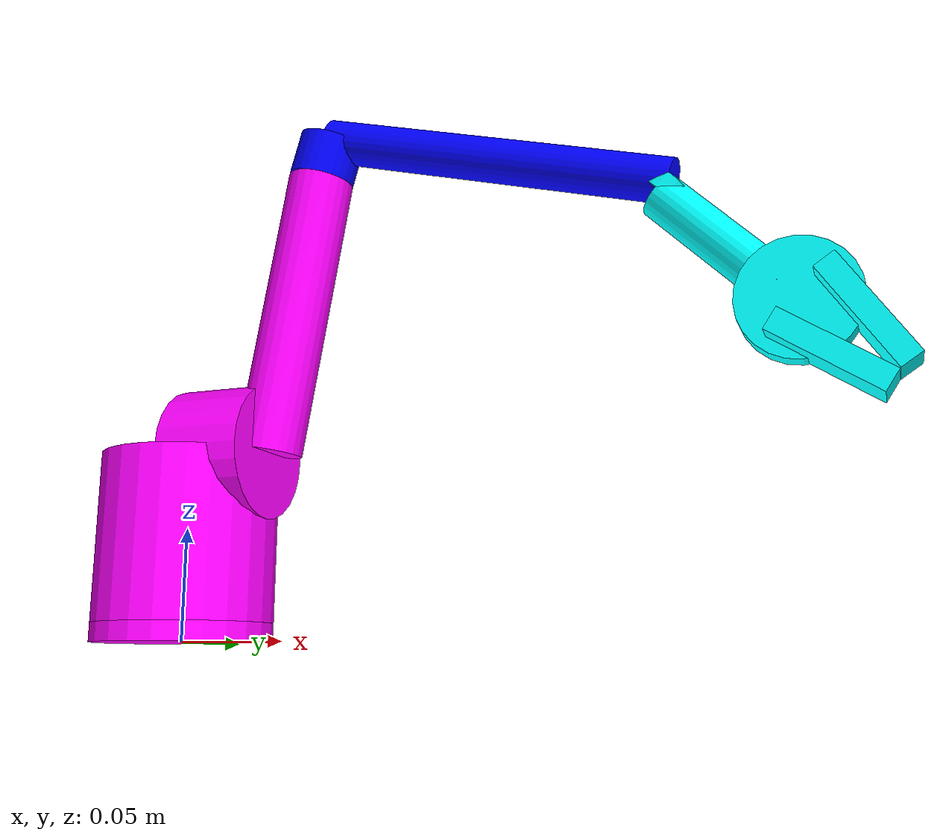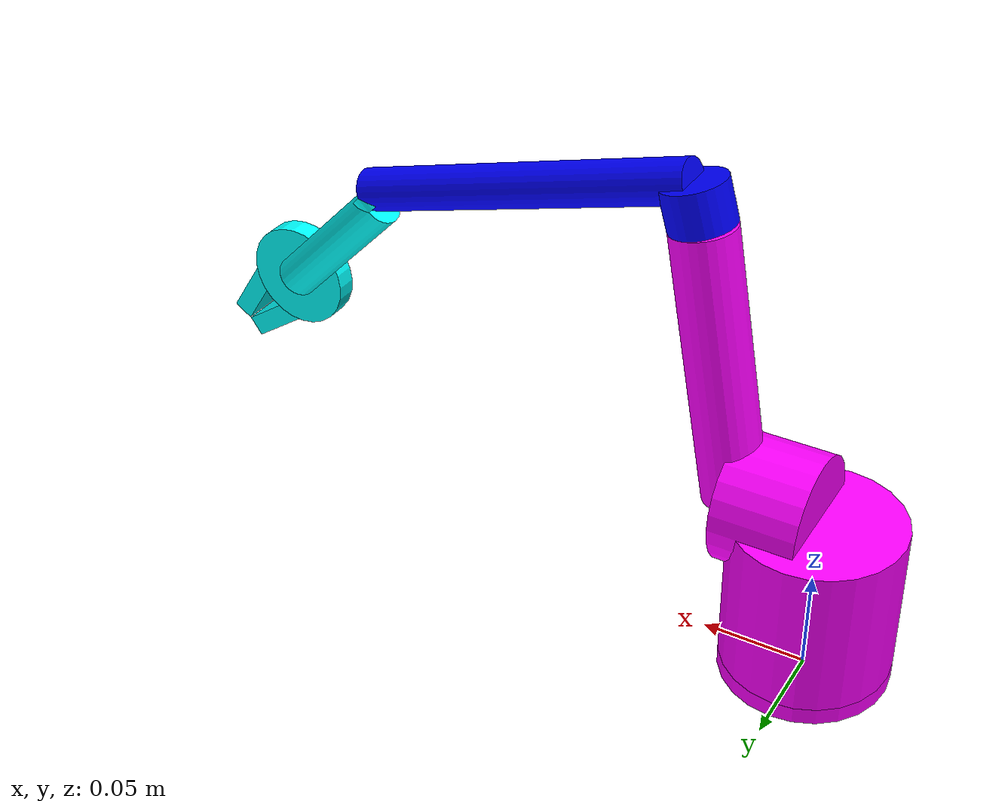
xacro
<?xml version="1.0"?>
<robot xmlns:xacro="http://www.ros.org/wiki/xacro" name="serial">

<xacro:include filename="../macros/inertia.xacro"/>
<xacro:include filename="parameters2.xacro"/>

<xacro:macro name="arm_link" params="joint parent link a_prev alpha d a theta ra ma rd md material">
<joint name="${joint}" type="revolute">
    <axis xyz="0 0 1"/>
    <limit effort="1000.0" lower="${-pi/3}" upper="${pi/3}" velocity="10"/>
    <origin
        rpy="${alpha} ${2*atan(-tan(theta/2)*sin(alpha))} ${2*atan(tan(theta/2)*cos(alpha))}"
        xyz="${a_prev} ${-d*sin(alpha)} ${d*cos(alpha)}"/>
    <parent link="${parent}"/>
    <child link="${link}"/>
</joint>
<transmission name="${joint}_tran">
    <type>transmission_interface/SimpleTransmission</type>
    <joint name="${joint}">
        <hardwareInterface>hardware_interface/PositionJointInterface</hardwareInterface>
    </joint>
    <actuator name="${joint}_actr">
        <hardwareInterface>hardware_interface/PositionJointInterface</hardwareInterface>
        <mechanicalReduction>1</mechanicalReduction>
    </actuator>
</transmission>

<link name="${link}">
<xacro:if value="${a!=0}">
<visual>
    <geometry>
        <cylinder length="${a}" radius="${ra}"/>
    </geometry>
    <origin rpy="0 ${pi/2} 0" xyz="${a/2} 0 0"/>
    <material name="${material}"/>
</visual>
<collision>
    <geometry>
        <cylinder length="${a}" radius="${ra}"/>
    </geometry>
    <origin rpy="0 ${pi/2} 0" xyz="${a/2} 0 0"/>
</collision>
</xacro:if>
<xacro:if value="${d!=0}">
<visual>
    <geometry>
        <cylinder length="${d}" radius="${rd}"/>
    </geometry>
    <origin rpy="0 0 0" xyz="0 0 ${-d/2}"/>
    <material name="${material}"/>
</visual>
<collision>
    <geometry>
        <cylinder length="${d}" radius="${rd}"/>
    </geometry>
    <origin rpy="0 0 0" xyz="0 0 ${-d/2}"/>
    <material name="${material}"/>
</collision>
</xacro:if>
<inertial>
    <origin rpy="0 0 0" xyz="0 0 0"/>
    <mass value="${ma+md}"/>
    <inertia
        ixx="${ma*(ra**2)/2 + md*(rd**2)/4 + md*(d**2)/3}"
        iyy="${ma*(ra**2)/4 + ma*(a**2)/3 + md*(rd**2)/4 + md*(d**2)/3}"
        izz="${md*(rd**2)/2 + ma*(ra**2)/4 + ma*(a**2)/3}"
        ixy="0" ixz="0" iyz="0"/>
</inertial>
</link>

</xacro:macro>

<gazebo>
<joint name="world_fix" type="fixed">
    <pose>0 0 0 0 0 0</pose>
    <parent>world</parent>
    <child>base_link</child>
</joint>
</gazebo>

<link name="base_link"/>
<joint name="base_joint" type="fixed">
    <origin rpy="0 0 0" xyz="0 0 ${0.1*d1}"/>
    <parent link="base_link"/>
    <child link="fixed_base"/>
</joint>

<link name="fixed_base">
<inertial>
    <origin rpy="0 0 0" xyz="0 0 ${-0.05*d1}"/>
    <mass value="${md1}"/>
    <xacro:cylinder_inertia_urdf mass="${md1}" radius="${rd1}" length="${0.1*d1}"/>
</inertial>
<visual>
    <geometry>
        <cylinder length="${0.1*d1}" radius="${rd1}"/>
    </geometry>
    <origin rpy="0 0 0" xyz="0 0 ${-0.05*d1}"/>
    <material name="mat1"/>
</visual>
<collision>
    <geometry>
        <cylinder length="${0.1*d1}" radius="${rd1}"/>
    </geometry>
    <origin rpy="0 0 0" xyz="0 0 ${-0.05*d1}"/>
</collision>
</link>

<xacro:arm_link joint="theta_1" parent="fixed_base" link="link1"
    a_prev="0" alpha="${alpha1}" d="${0.9*d1}" a="${a1}" theta="${theta1}" ra="${ra1}" ma="${ma1}" rd="${rd1}" md="${md1}" material="mat1"
/>

<xacro:arm_link joint="theta_2" parent="link1" link="link2"
    a_prev="${a1}" alpha="${alpha2}" d="${d2}" a="${a2}" theta="${theta2}" ra="${ra2}" ma="${ma2}" rd="${rd2}" md="${md2}" material="mat2"
/>

<xacro:arm_link joint="theta_3" parent="link2" link="link3"
    a_prev="${a2}" alpha="${alpha3}" d="${d3}" a="${a3}" theta="${theta3}" ra="${ra3}" ma="${ma3}" rd="${rd3}" md="${md3}" material="mat3"
/>

<xacro:arm_link joint="theta_4" parent="link3" link="link4"
    a_prev="${a3}" alpha="${alpha4}" d="${d4}" a="${a4}" theta="${theta4}" ra="${ra4}" ma="${ma4}" rd="${rd4}" md="${md4}" material="mat4"
/>

<xacro:arm_link joint="theta_5" parent="link4" link="link5"
    a_prev="${a4}" alpha="${alpha5}" d="${d5}" a="${a5}" theta="${theta5}" ra="${ra5}" ma="${ma5}" rd="${rd5}" md="${md5}" material="mat5"
/>

<xacro:arm_link joint="theta_6" parent="link5" link="link6"
    a_prev="${a5}" alpha="${alpha6}" d="${d6}" a="${a6}" theta="${theta6}" ra="${ra6}" ma="${ma6}" rd="${rd6}" md="${md6}" material="mat6"
/>

<link name="gripper_left">
<visual>
    <geometry>
        <box size="0.02 0.01 0.05"/>
    </geometry>
    <origin xyz="0 0 0.025"/>
    <material name="mat6"/>
</visual>
<collision>
    <geometry>
        <box size="0.02 0.01 0.05"/>
    </geometry>
    <origin xyz="0 0 0.025"/>
    <gazebo>
    <surface>
        <contact>
            <ode>
                <kp>1e15</kp>
                <kd>1e13</kd>
            </ode>
        </contact>
        <friction>
            <ode>
                <mu>1</mu>
                <mu2>1</mu2>
            </ode>
        </friction>
    </surface>
    </gazebo>
</collision>
<inertial>
    <origin xyz="0 0 0.025"/>
    <mass value="${ma6*2}"/>
    <xacro:box_inertia_urdf mass="${ma6*2}" w="0.02" h="0.01" d="0.05"/>
</inertial>
</link>

<link name="gripper_right">
<visual>
    <geometry>
        <box size="0.02 0.01 0.05"/>
    </geometry>
    <origin xyz="0 0 0.025"/>
    <material name="mat6"/>
</visual>
<collision>
    <geometry>
        <box size="0.02 0.01 0.05"/>
    </geometry>
    <origin xyz="0 0 0.025"/>
    <gazebo>
    <surface>
        <contact>
            <ode>
                <kp>1e15</kp>
                <kd>1e13</kd>
            </ode>
        </contact>
        <friction>
            <ode>
                <mu>1</mu>
                <mu2>1</mu2>
            </ode>
        </friction>
    </surface>
    </gazebo>
</collision>
<inertial>
    <origin xyz="0 0 0.025"/>
    <mass value="${ma6*2}"/>
    <xacro:box_inertia_urdf mass="${ma6*2}" w="0.02" h="0.01" d="0.05"/>
</inertial>
</link>

<joint name="gripper" type="revolute">
    <origin xyz="0.011 0.015 0" rpy="0.2 0 0"/>
    <parent link="link6"/>
    <child link="gripper_left"/>
    <axis xyz="-1 0 0"/>
    <limit
        effort="1000.0"
        lower="0"
        upper="${pi/2}"
        velocity="5"
    />
</joint>
<transmission name="gripper_tran">
    <type>transmission_interface/SimpleTransmission</type>
    <joint name="gripper">
        <hardwareInterface>hardware_interface/PositionJointInterface</hardwareInterface>
    </joint>
    <actuator name="gripper_actr">
        <hardwareInterface>hardware_interface/PositionJointInterface</hardwareInterface>
        <mechanicalReduction>1</mechanicalReduction>
    </actuator>
</transmission>

<joint name="gripper_mimic" type="revolute">
    <origin xyz="0.011 -0.015 0" rpy="-0.2 0 0"/>
    <parent link="link6"/>
    <child link="gripper_right"/>
    <axis xyz="1 0 0"/>
    <limit
        effort="1000.0"
        lower="0"
        upper="${pi/2}"
        velocity="5"
    />
    <mimic joint="gripper"/>
</joint>

<gazebo>
    <plugin name="gazebo_ros_control" filename="libgazebo_ros_control.so"/>
    <plugin name="gripper_mimic_joint_plugin" filename="libroboticsgroup_upatras_gazebo_mimic_joint_plugin.so">
        <joint>gripper</joint>
        <mimicJoint>gripper_mimic</mimicJoint>
        <hasPID />
        <maxEffort>5000</maxEffort>
    </plugin>
</gazebo>

</robot>

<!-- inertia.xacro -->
<robot xmlns:xacro="http://www.ros.org/wiki/xacro" name="delta_parameters">

<xacro:macro name="cylinder_inertia_urdf" params="mass radius length">
<inertia
    ixx="${mass*(radius**2/4 + length**2/12)}"
    iyy="${mass*(radius**2/4 + length**2/12)}"
    izz="${mass*(radius**2/2)}"
    ixy="0" ixz="0" iyz="0"
/>
</xacro:macro>

<xacro:macro name="box_inertia_urdf" params="mass w h d">
<inertia
    ixx="${mass*(h**2 + d**2)/12}"
    iyy="${mass*(w**2 + d**2)/12}"
    izz="${mass*(w**2 + h**2)/12}"
    ixy="0" ixz="0" iyz="0"
/>
</xacro:macro>

<xacro:macro name="cylinder_inertia_sdf" params="mass radius length">
<inertia>
    <ixx>${mass*(radius**2/4 + length**2/12)}</ixx>
    <iyy>${mass*(radius**2/4 + length**2/12)}</iyy>
    <izz>${mass*(radius**2/2)}</izz>
    <ixy>0</ixy> <ixz>0</ixz> <iyz>0</iyz>
</inertia>
</xacro:macro>

<xacro:macro name="box_inertia_sdf" params="mass w h d">
<inertia>
    <ixx>${mass*(h**2 + d**2)/12}</ixx>
    <iyy>${mass*(w**2 + d**2)/12}</iyy>
    <izz>${mass*(w**2 + h**2)/12}</izz>
    <ixy>0</ixy> <ixz>0</ixz> <iyz>0</iyz>
</inertia>
</xacro:macro>

</robot>

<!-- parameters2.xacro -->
<robot xmlns:xacro="http://www.ros.org/wiki/xacro" name="delta_parameters">

<!-- DH Parameters -->

<xacro:property name="alpha1" value="0"/>
<xacro:property name="d1" value="0.083"/>
<xacro:property name="a1" value="0.04"/>
<xacro:property name="theta1" value="0"/>

<xacro:property name="alpha2" value="${-pi/2}"/>
<xacro:property name="d2" value="0"/>
<xacro:property name="a2" value="0.13"/>
<xacro:property name="theta2" value="-1.4"/>

<xacro:property name="alpha3" value="0"/>
<xacro:property name="d3" value="0"/>
<xacro:property name="a3" value="0.02"/>
<xacro:property name="theta3" value="0.1"/>

<xacro:property name="alpha4" value="${-pi/2}"/>
<xacro:property name="d4" value="0.165"/>
<xacro:property name="a4" value="0"/>
<xacro:property name="theta4" value="0"/>

<xacro:property name="alpha5" value="${pi/2}"/>
<xacro:property name="d5" value="0"/>
<xacro:property name="a5" value="0.008"/>
<xacro:property name="theta5" value="3.66"/>

<xacro:property name="alpha6" value="${pi/2}"/>
<xacro:property name="d6" value="0.075"/>
<xacro:property name="a6" value="0.01"/>
<xacro:property name="theta6" value="${-pi/2}"/>

<!-- Other properties -->

<xacro:property name="rd1" value="0.04"/>
<xacro:property name="md1" value="0.1"/>
<xacro:property name="ra1" value="0.03"/>
<xacro:property name="ma1" value="0.05"/>
<material name="mat1">
    <color rgba="1 0 1 1"/>
</material>

<xacro:property name="rd2" value="0"/>
<xacro:property name="md2" value="0"/>
<xacro:property name="ra2" value="0.015"/>
<xacro:property name="ma2" value="0.08"/>
<material name="mat2">
    <color rgba="1 0 1 1"/>
</material>

<xacro:property name="rd3" value="0"/>
<xacro:property name="md3" value="0"/>
<xacro:property name="ra3" value="0.015"/>
<xacro:property name="ma3" value="0.01"/>
<material name="mat3">
    <color rgba="0 0 1 1"/>
</material>

<xacro:property name="rd4" value="0.01"/>
<xacro:property name="md4" value="0.08"/>
<xacro:property name="ra4" value="0"/>
<xacro:property name="ma4" value="0"/>
<material name="mat4">
    <color rgba="0 0 1 1"/>
</material>

<xacro:property name="rd5" value="0"/>
<xacro:property name="md5" value="0"/>
<xacro:property name="ra5" value="0.01"/>
<xacro:property name="ma5" value="0.01"/>
<material name="mat5">
    <color rgba="0 1 1 1"/>
</material>

<xacro:property name="rd6" value="0.01"/>
<xacro:property name="md6" value="0.01"/>
<xacro:property name="ra6" value="0.025"/>
<xacro:property name="ma6" value="0.03"/>
<material name="mat6">
    <color rgba="0 1 1 1"/>
</material>

</robot>
